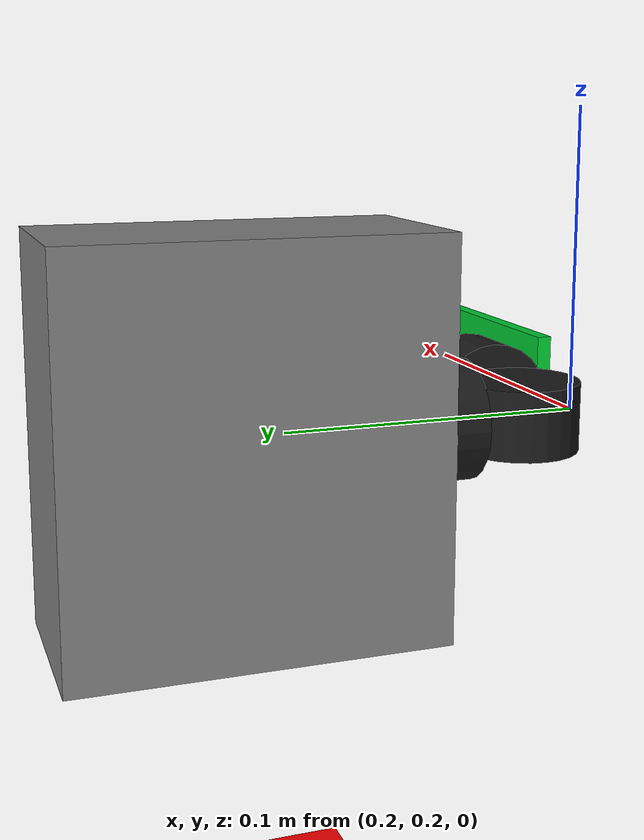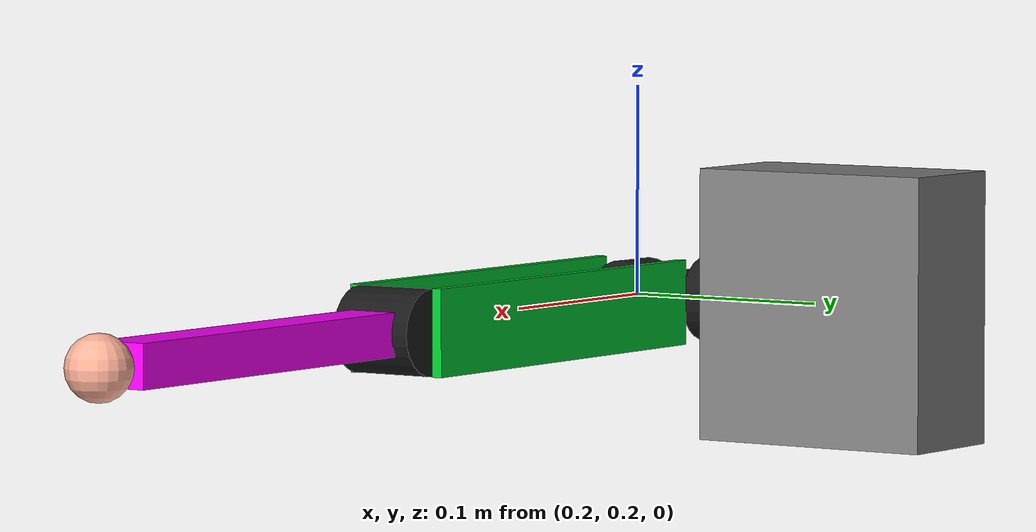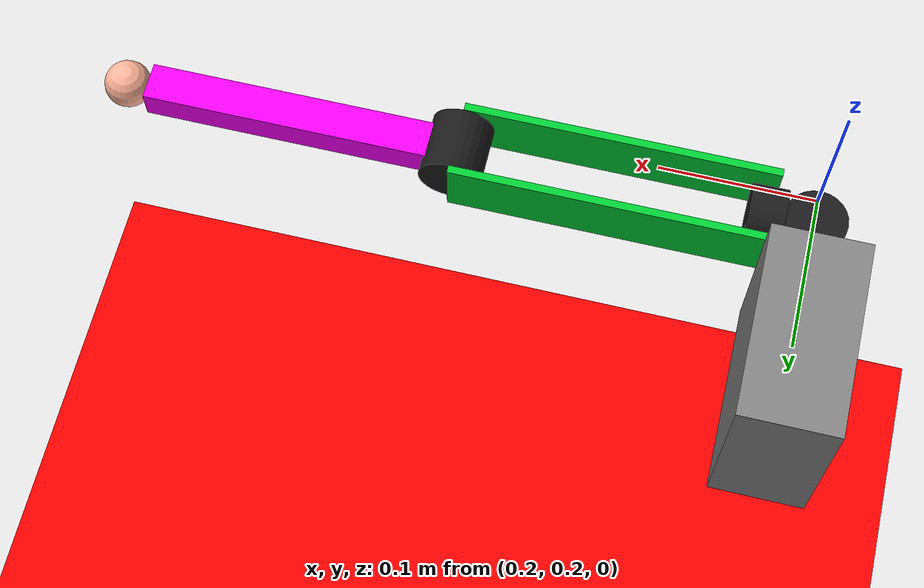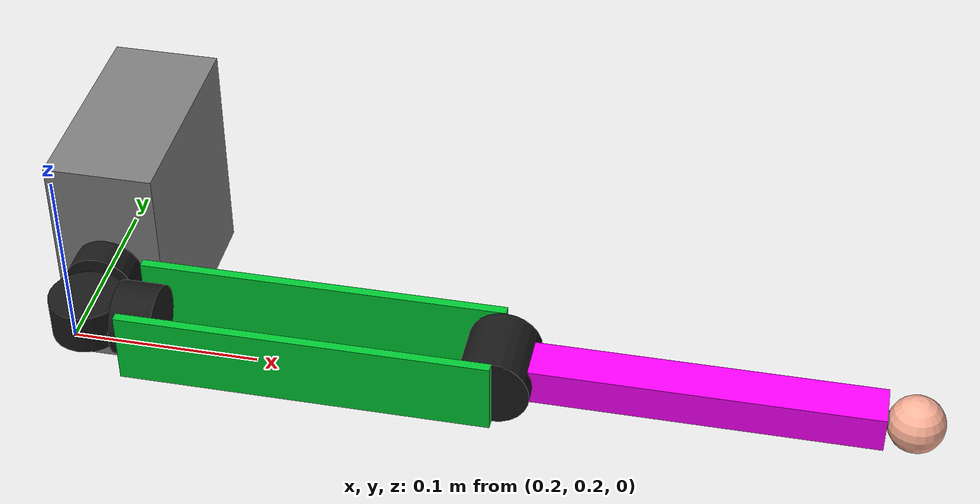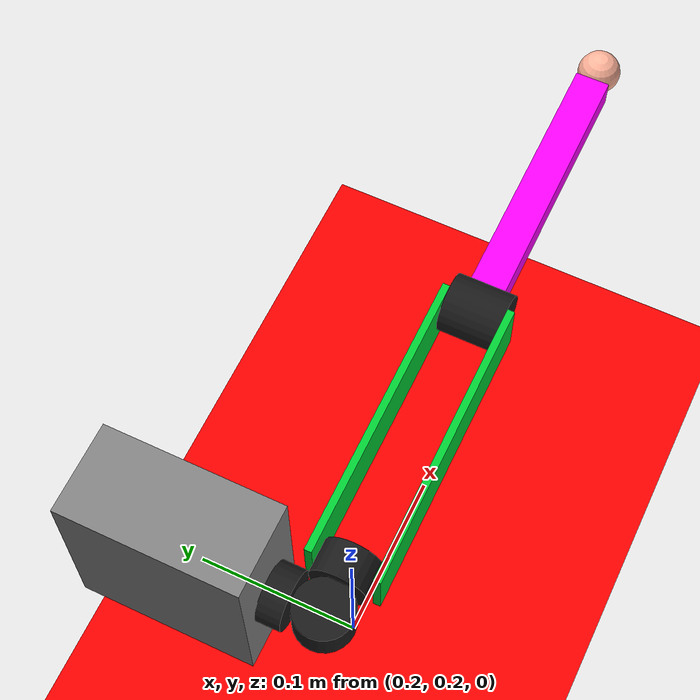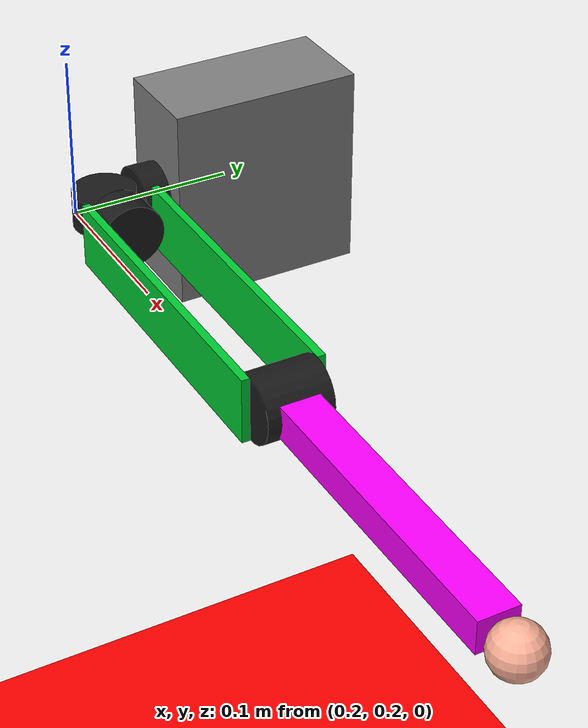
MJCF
<mujoco>
    <option timestep="0.0001"/>
    <option gravity="0 0 -9.81"/>
    <worldbody>
        <geom type="plane" size="10 10 0.1" pos="0 0 -0.5" rgba="1 0 0 1"/>
        <light diffuse="0.7 0.7 0.7" pos="0 0 3"/>
        <body name="torso" pos="0.2 0.25 0">
            <geom type="box" pos="0 0.065 0" size="0.03 0.06 0.064" rgba="0.5 0.5 0.5 1"/>
            <body name="arm" pos="0 0 0">
                <joint name="pitch_shoulder" pos="0 0 0" axis="0 1 0"/>

                <geom type="cylinder" size="0.0198 0.0115" pos="0 0 0" rgba="0.1 0.1 0.1 1" euler="90 0 0" mass="0.065"/>
                <body name="torse_part2" pos="0 -0.031 0">
                    <joint name="yaw_shoulder" pos="0 0 0" axis="0 0 1"/>

                    <geom type="cylinder" size="0.0198 0.0115" pos="0 0 0" rgba="0.1 0.1 0.1 1" mass="0.065"/>
                    <body name="body3" pos="0.03 0 0">
                        <joint name="roll_shoulder" axis="1 0 0"/>

                        <geom type="cylinder" size="0.0198 0.0115" pos="0 0 0" rgba="0.1 0.1 0.1 1" euler="0 90 0" mass="0.065"/>
                        <body name="elbow" pos="0.095 0 0">
                            <geom type="box" size="0.1 0.0025 0.02" pos="0 -0.0225 0" rgba="0 0.8 0.2 1" mass="0.02"/>
                            <geom type="box" size="0.1 0.0025 0.02" pos="0 0.0225 0" rgba="0 0.8 0.2 1" mass="0.02"/>
                            <body pos="0.1 0 0">
                                <joint name="elbow_joint" pos="0 0 0" axis="0 1 0"/>
                                <geom type="cylinder" size="0.0198 0.02" pos="0 0 0" euler="90 0 0" rgba="0.1 0.1 0.1 1" mass="0.065"/>
                                <body pos="0.1 0 0">
                                    <geom type="box" size="0.1 0.012 0.01" pos="0 0 0" rgba="1 0 1 1" mass="0.02"/>
                                    <body name="end_effector" pos="0.1 0 0">
                                        <geom type="sphere" size="0.015" pos="0.015 0 0" rgba="1 0.7 0.6 1" mass="0.05"/>
                                        <site name="end_effector"/>
                                    </body>
                                </body>
                            </body>
                        </body>
                    </body>
                </body>
            </body>
        </body>
    </worldbody>
</mujoco>
